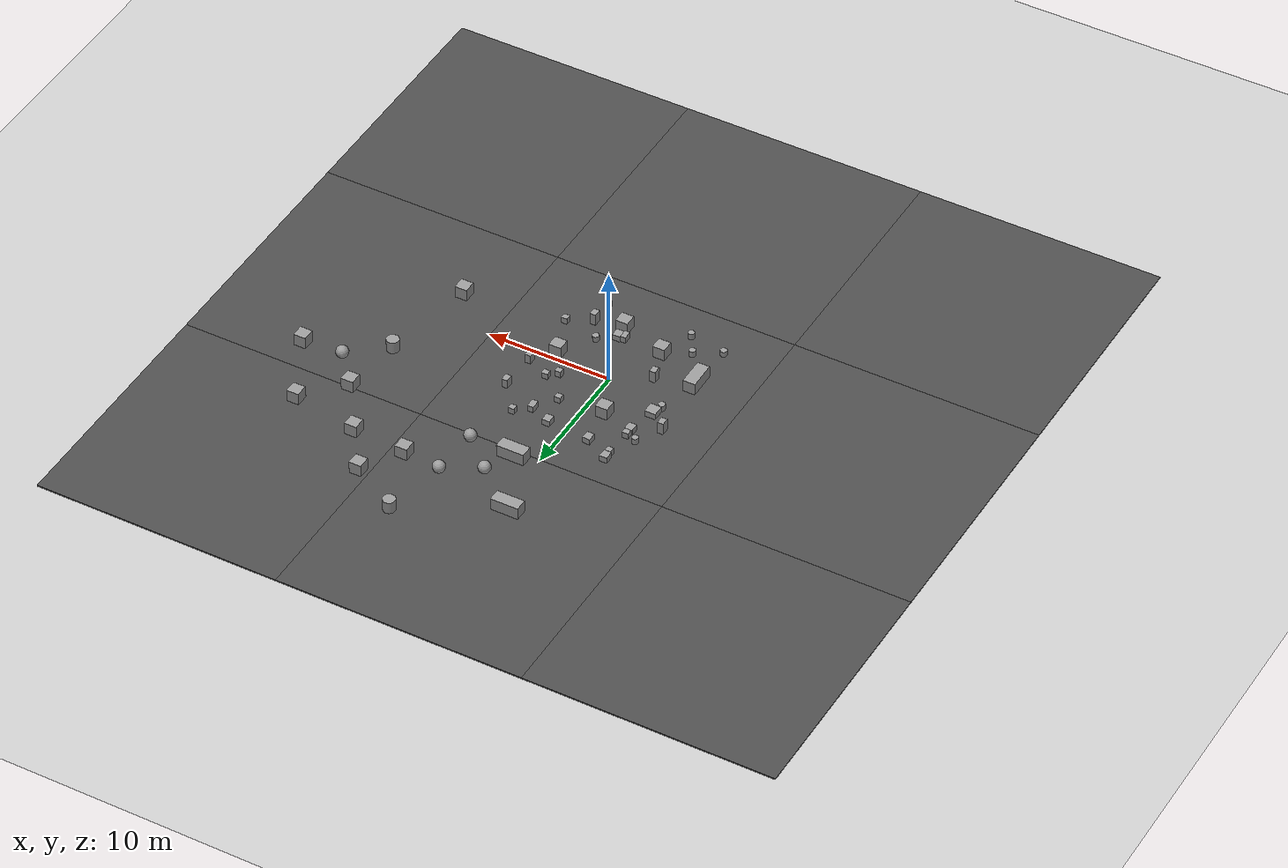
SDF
<sdf version="1.7">
 <world name="default">
  <model name="ground_plane">
   <static>1</static>
   <link name="link">
    <collision name="collision">
     <geometry><plane><normal>0 0 1</normal><size>100 100</size></plane></geometry>
     <surface>
      <contact><collide_bitmask>65535</collide_bitmask></contact>
      <friction><ode><mu>100</mu><mu2>50</mu2></ode></friction>
     </surface>
    </collision>
    <visual name="visual">
     <cast_shadows>0</cast_shadows>
     <geometry><plane><normal>0 0 1</normal><size>100 100</size></plane></geometry>
     <material>
      <script><uri>file://media/materials/scripts/gazebo.material</uri><name>Gazebo/Grey</name></script>
     </material>
    </visual>
   </link>
  </model>
  <model name="asphalt_plane">
   <static>1</static>
   <link name="link">
    <collision name="collision"><geometry><box><size>20 20 0.1</size></box></geometry></collision>
    <visual name="visual">
     <cast_shadows>0</cast_shadows>
     <geometry><box><size>20 20 0.1</size></box></geometry>
     <material>
      <script>
       <uri>model://asphalt_plane/materials/scripts</uri>
       <uri>model://asphalt_plane/materials/textures</uri>
       <name>vrc/asphalt</name>
      </script>
     </material>
    </visual>
   </link>
  </model>
  <model name="asphalt_plane_clone">
   <static>1</static>
   <link name="link">
    <collision name="collision"><geometry><box><size>20 20 0.1</size></box></geometry></collision>
    <visual name="visual">
     <cast_shadows>0</cast_shadows>
     <geometry><box><size>20 20 0.1</size></box></geometry>
     <material>
      <script>
       <uri>model://asphalt_plane/materials/scripts</uri>
       <uri>model://asphalt_plane/materials/textures</uri>
       <name>vrc/asphalt</name>
      </script>
     </material>
    </visual>
   </link>
   <pose>20 0 0 0 -0 0</pose>
  </model>
  <model name="asphalt_plane_clone_0">
   <static>1</static>
   <link name="link">
    <collision name="collision"><geometry><box><size>20 20 0.1</size></box></geometry></collision>
    <visual name="visual">
     <cast_shadows>0</cast_shadows>
     <geometry><box><size>20 20 0.1</size></box></geometry>
     <material>
      <script>
       <uri>model://asphalt_plane/materials/scripts</uri>
       <uri>model://asphalt_plane/materials/textures</uri>
       <name>vrc/asphalt</name>
      </script>
     </material>
    </visual>
   </link>
   <pose>20 -20 0 0 -0 0</pose>
  </model>
  <model name="asphalt_plane_clone_1">
   <static>1</static>
   <link name="link">
    <collision name="collision"><geometry><box><size>20 20 0.1</size></box></geometry></collision>
    <visual name="visual">
     <cast_shadows>0</cast_shadows>
     <geometry><box><size>20 20 0.1</size></box></geometry>
     <material>
      <script>
       <uri>model://asphalt_plane/materials/scripts</uri>
       <uri>model://asphalt_plane/materials/textures</uri>
       <name>vrc/asphalt</name>
      </script>
     </material>
    </visual>
   </link>
   <pose>0 -20 0 0 -0 0</pose>
  </model>
  <model name="asphalt_plane_clone_2">
   <static>1</static>
   <link name="link">
    <collision name="collision"><geometry><box><size>20 20 0.1</size></box></geometry></collision>
    <visual name="visual">
     <cast_shadows>0</cast_shadows>
     <geometry><box><size>20 20 0.1</size></box></geometry>
     <material>
      <script>
       <uri>model://asphalt_plane/materials/scripts</uri>
       <uri>model://asphalt_plane/materials/textures</uri>
       <name>vrc/asphalt</name>
      </script>
     </material>
    </visual>
   </link>
   <pose>-20 -20 0 0 -0 0</pose>
  </model>
  <model name="asphalt_plane_clone_3">
   <static>1</static>
   <link name="link">
    <collision name="collision"><geometry><box><size>20 20 0.1</size></box></geometry></collision>
    <visual name="visual">
     <cast_shadows>0</cast_shadows>
     <geometry><box><size>20 20 0.1</size></box></geometry>
     <material>
      <script>
       <uri>model://asphalt_plane/materials/scripts</uri>
       <uri>model://asphalt_plane/materials/textures</uri>
       <name>vrc/asphalt</name>
      </script>
     </material>
    </visual>
   </link>
   <pose>-20 0 0 0 -0 0</pose>
  </model>
  <model name="asphalt_plane_clone_4">
   <static>1</static>
   <link name="link">
    <collision name="collision"><geometry><box><size>20 20 0.1</size></box></geometry></collision>
    <visual name="visual">
     <cast_shadows>0</cast_shadows>
     <geometry><box><size>20 20 0.1</size></box></geometry>
     <material>
      <script>
       <uri>model://asphalt_plane/materials/scripts</uri>
       <uri>model://asphalt_plane/materials/textures</uri>
       <name>vrc/asphalt</name>
      </script>
     </material>
    </visual>
   </link>
   <pose>-20 20 0 0 -0 0</pose>
  </model>
  <model name="asphalt_plane_clone_5">
   <static>1</static>
   <link name="link">
    <collision name="collision"><geometry><box><size>20 20 0.1</size></box></geometry></collision>
    <visual name="visual">
     <cast_shadows>0</cast_shadows>
     <geometry><box><size>20 20 0.1</size></box></geometry>
     <material>
      <script>
       <uri>model://asphalt_plane/materials/scripts</uri>
       <uri>model://asphalt_plane/materials/textures</uri>
       <name>vrc/asphalt</name>
      </script>
     </material>
    </visual>
   </link>
   <pose>0 20 0 0 -0 0</pose>
  </model>
  <model name="asphalt_plane_clone_6">
   <static>1</static>
   <link name="link">
    <collision name="collision"><geometry><box><size>20 20 0.1</size></box></geometry></collision>
    <visual name="visual">
     <cast_shadows>0</cast_shadows>
     <geometry><box><size>20 20 0.1</size></box></geometry>
     <material>
      <script>
       <uri>model://asphalt_plane/materials/scripts</uri>
       <uri>model://asphalt_plane/materials/textures</uri>
       <name>vrc/asphalt</name>
      </script>
     </material>
    </visual>
   </link>
   <pose>20 20 0 0 -0 0</pose>
  </model>
  <model name="unit_box_0">
   <pose>4.32444 6.49188 0.301356 0 -0 1e-06</pose>
   <link name="link">
    <inertial>
     <mass>1</mass>
     <inertia>
      <ixx>0.166667</ixx>
      <ixy>0</ixy>
      <ixz>0</ixz>
      <iyy>0.166667</iyy>
      <iyz>0</iyz>
      <izz>0.166667</izz>
     </inertia>
    </inertial>
    <collision name="collision">
     <geometry><box><size>0.495294 0.467832 0.502712</size></box></geometry>
    </collision>
    <visual name="visual">
     <geometry><box><size>0.495294 0.467832 0.502712</size></box></geometry>
     <material>
      <script><name>Gazebo/Grey</name><uri>file://media/materials/scripts/gazebo.material</uri></script>
     </material>
    </visual>
   </link>
  </model>
  <model name="unit_box_0_clone">
   <pose>3.22245 5.47552 0.301351 -1.2e-05 1e-06 5e-06</pose>
   <link name="link">
    <inertial>
     <mass>1</mass>
     <inertia>
      <ixx>0.166667</ixx>
      <ixy>0</ixy>
      <ixz>0</ixz>
      <iyy>0.166667</iyy>
      <iyz>0</iyz>
      <izz>0.166667</izz>
     </inertia>
    </inertial>
    <collision name="collision">
     <geometry><box><size>0.495294 0.766084 0.502712</size></box></geometry>
    </collision>
    <visual name="visual">
     <geometry><box><size>0.495294 0.766084 0.502712</size></box></geometry>
     <material>
      <script><name>Gazebo/Grey</name><uri>file://media/materials/scripts/gazebo.material</uri></script>
     </material>
    </visual>
   </link>
  </model>
  <model name="unit_box_0_clone_0">
   <pose>1.49943 6.26197 0.301354 6e-06 -0 1e-06</pose>
   <link name="link">
    <inertial>
     <mass>1</mass>
     <inertia>
      <ixx>0.166667</ixx>
      <ixy>0</ixy>
      <ixz>0</ixz>
      <iyy>0.166667</iyy>
      <iyz>0</iyz>
      <izz>0.166667</izz>
     </inertia>
    </inertial>
    <collision name="collision">
     <geometry><box><size>0.622689 0.713467 0.502712</size></box></geometry>
    </collision>
    <visual name="visual">
     <geometry><box><size>0.622689 0.713467 0.502712</size></box></geometry>
     <material>
      <script><name>Gazebo/Grey</name><uri>file://media/materials/scripts/gazebo.material</uri></script>
     </material>
    </visual>
   </link>
  </model>
  <model name="unit_box_0_clone_4">
   <pose>4.11232 2.00992 0.301356 0 -0 1e-06</pose>
   <link name="link">
    <inertial>
     <mass>1</mass>
     <inertia>
      <ixx>0.166667</ixx>
      <ixy>0</ixy>
      <ixz>0</ixz>
      <iyy>0.166667</iyy>
      <iyz>0</iyz>
      <izz>0.166667</izz>
     </inertia>
    </inertial>
    <collision name="collision">
     <geometry><box><size>0.495294 0.467832 0.502712</size></box></geometry>
    </collision>
    <visual name="visual">
     <geometry><box><size>0.495294 0.467832 0.502712</size></box></geometry>
     <material>
      <script><name>Gazebo/Grey</name><uri>file://media/materials/scripts/gazebo.material</uri></script>
     </material>
    </visual>
   </link>
  </model>
  <model name="unit_cylinder_clone_6">
   <pose>2.94272 -3.28712 0.305485 -0.030723 0.027336 -0.001322</pose>
   <link name="link">
    <inertial>
     <mass>1</mass>
     <inertia><ixx>0.145833</ixx><ixy>0</ixy><ixz>0</ixz><iyy>0.145833</iyy><iyz>0</iyz><izz>0.125</izz></inertia>
    </inertial>
    <collision name="collision">
     <geometry><cylinder><radius>0.264047</radius><length>0.48967</length></cylinder></geometry>
    </collision>
    <visual name="visual">
     <geometry><cylinder><radius>0.264047</radius><length>0.48967</length></cylinder></geometry>
     <material>
      <script><name>Gazebo/Grey</name><uri>file://media/materials/scripts/gazebo.material</uri></script>
     </material>
    </visual>
   </link>
  </model>
  <model name="unit_cylinder_clone_10">
   <pose>-4.02004 -5.33492 0.294826 -2e-06 -0 0.000646</pose>
   <link name="link">
    <inertial>
     <mass>1</mass>
     <inertia><ixx>0.145833</ixx><ixy>0</ixy><ixz>0</ixz><iyy>0.145833</iyy><iyz>0</iyz><izz>0.125</izz></inertia>
    </inertial>
    <collision name="collision">
     <geometry><cylinder><radius>0.264047</radius><length>0.48967</length></cylinder></geometry>
    </collision>
    <visual name="visual">
     <geometry><cylinder><radius>0.264047</radius><length>0.48967</length></cylinder></geometry>
     <material>
      <script><name>Gazebo/Grey</name><uri>file://media/materials/scripts/gazebo.material</uri></script>
     </material>
    </visual>
   </link>
  </model>
  <model name="unit_cylinder_clone_13">
   <pose>-6.00061 -6.4427 0.294835 1e-06 -0 0.000896</pose>
   <link name="link">
    <inertial>
     <mass>1</mass>
     <inertia><ixx>0.145833</ixx><ixy>0</ixy><ixz>0</ixz><iyy>0.145833</iyy><iyz>0</iyz><izz>0.125</izz></inertia>
    </inertial>
    <collision name="collision">
     <geometry><cylinder><radius>0.264047</radius><length>0.48967</length></cylinder></geometry>
    </collision>
    <visual name="visual">
     <geometry><cylinder><radius>0.264047</radius><length>0.48967</length></cylinder></geometry>
     <material>
      <script><name>Gazebo/Grey</name><uri>file://media/materials/scripts/gazebo.material</uri></script>
     </material>
    </visual>
   </link>
  </model>
  <model name="unit_cylinder_clone_14">
   <pose>-4.99997 5 0.294825 0 -0 0.001406</pose>
   <link name="link">
    <inertial>
     <mass>1</mass>
     <inertia><ixx>0.145833</ixx><ixy>0</ixy><ixz>0</ixz><iyy>0.145833</iyy><iyz>0</iyz><izz>0.125</izz></inertia>
    </inertial>
    <collision name="collision">
     <geometry><cylinder><radius>0.264047</radius><length>0.48967</length></cylinder></geometry>
    </collision>
    <visual name="visual">
     <geometry><cylinder><radius>0.264047</radius><length>0.48967</length></cylinder></geometry>
     <material>
      <script><name>Gazebo/Grey</name><uri>file://media/materials/scripts/gazebo.material</uri></script>
     </material>
    </visual>
   </link>
  </model>
  <model name="unit_cylinder_clone_15">
   <pose>4 -7.00003 0.294826 -1e-06 -5e-06 0.001328</pose>
   <link name="link">
    <inertial>
     <mass>1</mass>
     <inertia><ixx>0.145833</ixx><ixy>0</ixy><ixz>0</ixz><iyy>0.145833</iyy><iyz>0</iyz><izz>0.125</izz></inertia>
    </inertial>
    <collision name="collision">
     <geometry><cylinder><radius>0.264047</radius><length>0.48967</length></cylinder></geometry>
    </collision>
    <visual name="visual">
     <geometry><cylinder><radius>0.264047</radius><length>0.48967</length></cylinder></geometry>
     <material>
      <script><name>Gazebo/Grey</name><uri>file://media/materials/scripts/gazebo.material</uri></script>
     </material>
    </visual>
   </link>
  </model>
  <model name="unit_cylinder_clone_16">
   <pose>-4.94243 0.925003 0.294824 3e-06 -4e-06 0.00113</pose>
   <link name="link">
    <inertial>
     <mass>1</mass>
     <inertia><ixx>0.145833</ixx><ixy>0</ixy><ixz>0</ixz><iyy>0.145833</iyy><iyz>0</iyz><izz>0.125</izz></inertia>
    </inertial>
    <collision name="collision">
     <geometry><cylinder><radius>0.264047</radius><length>0.48967</length></cylinder></geometry>
    </collision>
    <visual name="visual">
     <geometry><cylinder><radius>0.264047</radius><length>0.48967</length></cylinder></geometry>
     <material>
      <script><name>Gazebo/Grey</name><uri>file://media/materials/scripts/gazebo.material</uri></script>
     </material>
    </visual>
   </link>
  </model>
  <model name="unit_cylinder_clone_17">
   <pose>-3.00012 -6.99989 0.294837 8e-06 4e-06 0.000237</pose>
   <link name="link">
    <inertial>
     <mass>1</mass>
     <inertia><ixx>0.145833</ixx><ixy>0</ixy><ixz>0</ixz><iyy>0.145833</iyy><iyz>0</iyz><izz>0.125</izz></inertia>
    </inertial>
    <collision name="collision">
     <geometry><cylinder><radius>0.264047</radius><length>0.48967</length></cylinder></geometry>
    </collision>
    <visual name="visual">
     <geometry><cylinder><radius>0.264047</radius><length>0.48967</length></cylinder></geometry>
     <material>
      <script><name>Gazebo/Grey</name><uri>file://media/materials/scripts/gazebo.material</uri></script>
     </material>
    </visual>
   </link>
  </model>
  <model name="unit_box_0_clone_1_clone">
   <pose>-4.15621 4.74188 0.301356 0 -0 1e-06</pose>
   <link name="link">
    <inertial>
     <mass>1</mass>
     <inertia>
      <ixx>0.166667</ixx>
      <ixy>0</ixy>
      <ixz>0</ixz>
      <iyy>0.166667</iyy>
      <iyz>0</iyz>
      <izz>0.166667</izz>
     </inertia>
    </inertial>
    <collision name="collision">
     <geometry><box><size>0.495294 0.467832 0.502712</size></box></geometry>
    </collision>
    <visual name="visual">
     <geometry><box><size>0.495294 0.467832 0.502712</size></box></geometry>
     <material>
      <script><name>Gazebo/Grey</name><uri>file://media/materials/scripts/gazebo.material</uri></script>
     </material>
    </visual>
   </link>
  </model>
  <model name="unit_box_0_clone_1_clone_0">
   <pose>-4 7 0.301356 0 -0 1e-06</pose>
   <link name="link">
    <inertial>
     <mass>1</mass>
     <inertia>
      <ixx>0.166667</ixx>
      <ixy>0</ixy>
      <ixz>0</ixz>
      <iyy>0.166667</iyy>
      <iyz>0</iyz>
      <izz>0.166667</izz>
     </inertia>
    </inertial>
    <collision name="collision">
     <geometry><box><size>0.495294 0.467832 0.502712</size></box></geometry>
    </collision>
    <visual name="visual">
     <geometry><box><size>0.495294 0.467832 0.502712</size></box></geometry>
     <material>
      <script><name>Gazebo/Grey</name><uri>file://media/materials/scripts/gazebo.material</uri></script>
     </material>
    </visual>
   </link>
  </model>
  <model name="unit_box_0_clone_1_clone_2">
   <pose>5.89538 -3.99875 0.301356 0 -0 1e-06</pose>
   <link name="link">
    <inertial>
     <mass>1</mass>
     <inertia>
      <ixx>0.166667</ixx>
      <ixy>0</ixy>
      <ixz>0</ixz>
      <iyy>0.166667</iyy>
      <iyz>0</iyz>
      <izz>0.166667</izz>
     </inertia>
    </inertial>
    <collision name="collision">
     <geometry><box><size>0.495294 0.467832 0.502712</size></box></geometry>
    </collision>
    <visual name="visual">
     <geometry><box><size>0.495294 0.467832 0.502712</size></box></geometry>
     <material>
      <script><name>Gazebo/Grey</name><uri>file://media/materials/scripts/gazebo.material</uri></script>
     </material>
    </visual>
   </link>
  </model>
  <model name="unit_box_1">
   <pose>1.73473 -5.4484 0.55 0 -0 0</pose>
   <link name="link">
    <inertial>
     <mass>1</mass>
     <inertia>
      <ixx>0.166667</ixx>
      <ixy>0</ixy>
      <ixz>0</ixz>
      <iyy>0.166667</iyy>
      <iyz>0</iyz>
      <izz>0.166667</izz>
     </inertia>
    </inertial>
    <collision name="collision"><geometry><box><size>1 1 1</size></box></geometry></collision>
    <visual name="visual">
     <geometry><box><size>1 1 1</size></box></geometry>
     <material>
      <script><name>Gazebo/Grey</name><uri>file://media/materials/scripts/gazebo.material</uri></script>
     </material>
    </visual>
   </link>
  </model>
  <model name="unit_box_2">
   <pose>-2.0426 -4.24978 0.55 0 -0 0</pose>
   <link name="link">
    <inertial>
     <mass>1</mass>
     <inertia>
      <ixx>0.166667</ixx>
      <ixy>0</ixy>
      <ixz>0</ixz>
      <iyy>0.166667</iyy>
      <iyz>0</iyz>
      <izz>0.166667</izz>
     </inertia>
    </inertial>
    <collision name="collision"><geometry><box><size>1 1 1</size></box></geometry></collision>
    <visual name="visual">
     <geometry><box><size>1 1 1</size></box></geometry>
     <material>
      <script><name>Gazebo/Grey</name><uri>file://media/materials/scripts/gazebo.material</uri></script>
     </material>
    </visual>
   </link>
  </model>
  <model name="unit_box_3_clone_0">
   <pose>-2.8958 -1.60924 0.55 0 -0 0</pose>
   <link name="link">
    <inertial>
     <mass>1</mass>
     <inertia>
      <ixx>0.166667</ixx>
      <ixy>0</ixy>
      <ixz>0</ixz>
      <iyy>0.166667</iyy>
      <iyz>0</iyz>
      <izz>0.166667</izz>
     </inertia>
    </inertial>
    <collision name="collision"><geometry><box><size>0.473217 0.637104 1</size></box></geometry></collision>
    <visual name="visual">
     <geometry><box><size>0.473217 0.637104 1</size></box></geometry>
     <material>
      <script><name>Gazebo/Grey</name><uri>file://media/materials/scripts/gazebo.material</uri></script>
     </material>
    </visual>
   </link>
  </model>
  <model name="unit_box_3_clone_1">
   <pose>6.15547 4.18849 0.422713 0 -0 0</pose>
   <link name="link">
    <inertial>
     <mass>1</mass>
     <inertia>
      <ixx>0.166667</ixx>
      <ixy>0</ixy>
      <ixz>0</ixz>
      <iyy>0.166667</iyy>
      <iyz>0</iyz>
      <izz>0.166667</izz>
     </inertia>
    </inertial>
    <collision name="collision">
     <geometry><box><size>0.473217 0.637104 0.745427</size></box></geometry>
    </collision>
    <visual name="visual">
     <geometry><box><size>0.473217 0.637104 0.745427</size></box></geometry>
     <material>
      <script><name>Gazebo/Grey</name><uri>file://media/materials/scripts/gazebo.material</uri></script>
     </material>
    </visual>
   </link>
  </model>
  <model name="unit_box_3_clone_2">
   <pose>-6.12917 2.98269 0.55 0 -0 0</pose>
   <link name="link">
    <inertial>
     <mass>1</mass>
     <inertia>
      <ixx>0.166667</ixx>
      <ixy>0</ixy>
      <ixz>0</ixz>
      <iyy>0.166667</iyy>
      <iyz>0</iyz>
      <izz>0.166667</izz>
     </inertia>
    </inertial>
    <collision name="collision"><geometry><box><size>0.473217 0.637104 1</size></box></geometry></collision>
    <visual name="visual">
     <geometry><box><size>0.473217 0.637104 1</size></box></geometry>
     <material>
      <script><name>Gazebo/Grey</name><uri>file://media/materials/scripts/gazebo.material</uri></script>
     </material>
    </visual>
   </link>
  </model>
  <model name="unit_box_3_clone_3">
   <pose>4 -5 0.55 0 -0 0</pose>
   <link name="link">
    <inertial>
     <mass>1</mass>
     <inertia>
      <ixx>0.166667</ixx>
      <ixy>0</ixy>
      <ixz>0</ixz>
      <iyy>0.166667</iyy>
      <iyz>0</iyz>
      <izz>0.166667</izz>
     </inertia>
    </inertial>
    <collision name="collision"><geometry><box><size>0.473217 0.637104 1</size></box></geometry></collision>
    <visual name="visual">
     <geometry><box><size>0.473217 0.637104 1</size></box></geometry>
     <material>
      <script><name>Gazebo/Grey</name><uri>file://media/materials/scripts/gazebo.material</uri></script>
     </material>
    </visual>
   </link>
  </model>
  <model name="unit_box_3_clone_5">
   <pose>6.02964 1.04247 0.43567 0 -0 0</pose>
   <link name="link">
    <inertial>
     <mass>1</mass>
     <inertia>
      <ixx>0.166667</ixx>
      <ixy>0</ixy>
      <ixz>0</ixz>
      <iyy>0.166667</iyy>
      <iyz>0</iyz>
      <izz>0.166667</izz>
     </inertia>
    </inertial>
    <collision name="collision"><geometry><box><size>0.473217 0.637104 0.77134</size></box></geometry></collision>
    <visual name="visual">
     <geometry><box><size>0.473217 0.637104 0.77134</size></box></geometry>
     <material>
      <script><name>Gazebo/Grey</name><uri>file://media/materials/scripts/gazebo.material</uri></script>
     </material>
    </visual>
   </link>
  </model>
  <model name="unit_box_4">
   <pose>15.9542 9.93417 0.549998 -2e-06 2e-06 -6e-06</pose>
   <link name="link">
    <inertial>
     <mass>1</mass>
     <inertia>
      <ixx>0.166667</ixx>
      <ixy>0</ixy>
      <ixz>0</ixz>
      <iyy>0.166667</iyy>
      <iyz>0</iyz>
      <izz>0.166667</izz>
     </inertia>
    </inertial>
    <collision name="collision"><geometry><box><size>1 1 1</size></box></geometry></collision>
    <visual name="visual">
     <geometry><box><size>1 1 1</size></box></geometry>
     <material>
      <script><name>Gazebo/Grey</name><uri>file://media/materials/scripts/gazebo.material</uri></script>
     </material>
    </visual>
   </link>
  </model>
  <model name="unit_box_5">
   <pose>1.86598 10.6312 0.549967 0 2.9e-05 0</pose>
   <link name="link">
    <inertial>
     <mass>1</mass>
     <inertia>
      <ixx>0.166667</ixx>
      <ixy>0</ixy>
      <ixz>0</ixz>
      <iyy>0.166667</iyy>
      <iyz>0</iyz>
      <izz>0.166667</izz>
     </inertia>
    </inertial>
    <collision name="collision"><geometry><box><size>2.25366 1 1</size></box></geometry></collision>
    <visual name="visual">
     <geometry><box><size>2.25366 1 1</size></box></geometry>
     <material>
      <script><name>Gazebo/Grey</name><uri>file://media/materials/scripts/gazebo.material</uri></script>
     </material>
    </visual>
   </link>
  </model>
  <model name="unit_box_5_clone">
   <pose>-0.607333 15.7172 0.549967 0 -2.9e-05 0</pose>
   <link name="link">
    <inertial>
     <mass>1</mass>
     <inertia>
      <ixx>0.166667</ixx>
      <ixy>0</ixy>
      <ixz>0</ixz>
      <iyy>0.166667</iyy>
      <iyz>0</iyz>
      <izz>0.166667</izz>
     </inertia>
    </inertial>
    <collision name="collision"><geometry><box><size>2.25366 1 1</size></box></geometry></collision>
    <visual name="visual">
     <geometry><box><size>2.25366 1 1</size></box></geometry>
     <material>
      <script><name>Gazebo/Grey</name><uri>file://media/materials/scripts/gazebo.material</uri></script>
     </material>
    </visual>
   </link>
  </model>
  <model name="unit_sphere">
   <link name="link">
    <inertial>
     <mass>1.41372</mass>
     <inertia>
      <ixx>0.141372</ixx>
      <ixy>0</ixy>
      <ixz>0</ixz>
      <iyy>0.141372</iyy>
      <iyz>0</iyz>
      <izz>0.141372</izz>
     </inertia>
    </inertial>
    <visual name="visual">
     <geometry><sphere><radius>0.5</radius></sphere></geometry>
     <material>
      <script><name>Gazebo/Grey</name><uri>file://media/materials/scripts/gazebo.material</uri></script>
      <shader type="pixel"><normal_map>__default__</normal_map></shader>
     </material>
    </visual>
    <collision name="collision">
     <geometry><sphere><radius>0.5</radius></sphere></geometry>
     <surface>
      <friction>
       <ode><mu>1</mu><mu2>1</mu2><fdir1>0 0 0</fdir1><slip1>0</slip1><slip2>0</slip2></ode>
       <torsional>
        <coefficient>1</coefficient>
        <patch_radius>0</patch_radius>
        <surface_radius>0</surface_radius>
        <use_patch_radius>1</use_patch_radius>
        <ode><slip>0</slip></ode>
       </torsional>
      </friction>
      <bounce><restitution_coefficient>0</restitution_coefficient><threshold>1e+06</threshold></bounce>
      <contact>
       <collide_without_contact>0</collide_without_contact>
       <collide_without_contact_bitmask>1</collide_without_contact_bitmask>
       <collide_bitmask>1</collide_bitmask>
       <ode>
        <soft_cfm>0</soft_cfm>
        <soft_erp>0.2</soft_erp>
        <kp>1e+13</kp>
        <kd>1</kd>
        <max_vel>0.01</max_vel>
        <min_depth>0</min_depth>
       </ode>
       <bullet>
        <split_impulse>1</split_impulse>
        <split_impulse_penetration_threshold>-0.01</split_impulse_penetration_threshold>
        <soft_cfm>0</soft_cfm>
        <soft_erp>0.2</soft_erp>
        <kp>1e+13</kp>
        <kd>1</kd>
       </bullet>
      </contact>
     </surface>
    </collision>
   </link>
   <static>0</static>
   <pose>5.71347 14.6249 0.55 0 -0 0</pose>
  </model>
  <model name="unit_sphere_clone">
   <link name="link">
    <inertial>
     <mass>1.41372</mass>
     <inertia>
      <ixx>0.141372</ixx>
      <ixy>0</ixy>
      <ixz>0</ixz>
      <iyy>0.141372</iyy>
      <iyz>0</iyz>
      <izz>0.141372</izz>
     </inertia>
    </inertial>
    <visual name="visual">
     <geometry><sphere><radius>0.5</radius></sphere></geometry>
     <material>
      <script><name>Gazebo/Grey</name><uri>file://media/materials/scripts/gazebo.material</uri></script>
      <shader type="pixel"><normal_map>__default__</normal_map></shader>
     </material>
    </visual>
    <collision name="collision">
     <geometry><sphere><radius>0.5</radius></sphere></geometry>
     <surface>
      <friction>
       <ode><mu>1</mu><mu2>1</mu2><fdir1>0 0 0</fdir1><slip1>0</slip1><slip2>0</slip2></ode>
       <torsional>
        <coefficient>1</coefficient>
        <patch_radius>0</patch_radius>
        <surface_radius>0</surface_radius>
        <use_patch_radius>1</use_patch_radius>
        <ode><slip>0</slip></ode>
       </torsional>
      </friction>
      <bounce><restitution_coefficient>0</restitution_coefficient><threshold>1e+06</threshold></bounce>
      <contact>
       <collide_without_contact>0</collide_without_contact>
       <collide_without_contact_bitmask>1</collide_without_contact_bitmask>
       <collide_bitmask>1</collide_bitmask>
       <ode>
        <soft_cfm>0</soft_cfm>
        <soft_erp>0.2</soft_erp>
        <kp>1e+13</kp>
        <kd>1</kd>
        <max_vel>0.01</max_vel>
        <min_depth>0</min_depth>
       </ode>
       <bullet>
        <split_impulse>1</split_impulse>
        <split_impulse_penetration_threshold>-0.01</split_impulse_penetration_threshold>
        <soft_cfm>0</soft_cfm>
        <soft_erp>0.2</soft_erp>
        <kp>1e+13</kp>
        <kd>1</kd>
       </bullet>
      </contact>
     </surface>
    </collision>
   </link>
   <static>0</static>
   <pose>5.44361 10.6261 0.55 0 -0 0</pose>
  </model>
  <model name="unit_cylinder_0">
   <pose>15.381 4.88172 0.55 -0 -0 -7.3e-05</pose>
   <link name="link">
    <inertial>
     <mass>1</mass>
     <inertia><ixx>0.145833</ixx><ixy>0</ixy><ixz>0</ixz><iyy>0.145833</iyy><iyz>0</iyz><izz>0.125</izz></inertia>
    </inertial>
    <collision name="collision">
     <geometry><cylinder><radius>0.5</radius><length>1</length></cylinder></geometry>
    </collision>
    <visual name="visual">
     <geometry><cylinder><radius>0.5</radius><length>1</length></cylinder></geometry>
     <material>
      <script><name>Gazebo/Grey</name><uri>file://media/materials/scripts/gazebo.material</uri></script>
     </material>
    </visual>
   </link>
  </model>
  <model name="unit_sphere_clone_0">
   <link name="link">
    <inertial>
     <mass>1.41372</mass>
     <inertia>
      <ixx>0.141372</ixx>
      <ixy>0</ixy>
      <ixz>0</ixz>
      <iyy>0.141372</iyy>
      <iyz>0</iyz>
      <izz>0.141372</izz>
     </inertia>
    </inertial>
    <visual name="visual">
     <geometry><sphere><radius>0.5</radius></sphere></geometry>
     <material>
      <script><name>Gazebo/Grey</name><uri>file://media/materials/scripts/gazebo.material</uri></script>
      <shader type="pixel"><normal_map>__default__</normal_map></shader>
     </material>
    </visual>
    <collision name="collision">
     <geometry><sphere><radius>0.5</radius></sphere></geometry>
     <surface>
      <friction>
       <ode><mu>1</mu><mu2>1</mu2><fdir1>0 0 0</fdir1><slip1>0</slip1><slip2>0</slip2></ode>
       <torsional>
        <coefficient>1</coefficient>
        <patch_radius>0</patch_radius>
        <surface_radius>0</surface_radius>
        <use_patch_radius>1</use_patch_radius>
        <ode><slip>0</slip></ode>
       </torsional>
      </friction>
      <bounce><restitution_coefficient>0</restitution_coefficient><threshold>1e+06</threshold></bounce>
      <contact>
       <collide_without_contact>0</collide_without_contact>
       <collide_without_contact_bitmask>1</collide_without_contact_bitmask>
       <collide_bitmask>1</collide_bitmask>
       <ode>
        <soft_cfm>0</soft_cfm>
        <soft_erp>0.2</soft_erp>
        <kp>1e+13</kp>
        <kd>1</kd>
        <max_vel>0.01</max_vel>
        <min_depth>0</min_depth>
       </ode>
       <bullet>
        <split_impulse>1</split_impulse>
        <split_impulse_penetration_threshold>-0.01</split_impulse_penetration_threshold>
        <soft_cfm>0</soft_cfm>
        <soft_erp>0.2</soft_erp>
        <kp>1e+13</kp>
        <kd>1</kd>
       </bullet>
      </contact>
     </surface>
    </collision>
   </link>
   <static>0</static>
   <pose>2.83927 13.0704 0.55 0 -0 0</pose>
  </model>
  <model name="unit_box_4_clone">
   <pose>8.81735 14.2654 0.55 0 -0 0</pose>
   <link name="link">
    <inertial>
     <mass>1</mass>
     <inertia>
      <ixx>0.166667</ixx>
      <ixy>0</ixy>
      <ixz>0</ixz>
      <iyy>0.166667</iyy>
      <iyz>0</iyz>
      <izz>0.166667</izz>
     </inertia>
    </inertial>
    <collision name="collision"><geometry><box><size>1 1 1</size></box></geometry></collision>
    <visual name="visual">
     <geometry><box><size>1 1 1</size></box></geometry>
     <material>
      <script><name>Gazebo/Grey</name><uri>file://media/materials/scripts/gazebo.material</uri></script>
     </material>
    </visual>
   </link>
  </model>
  <model name="unit_cylinder_1">
   <pose>6.78695 19.7557 0.55 -0 -0 -0.000801</pose>
   <link name="link">
    <inertial>
     <mass>1</mass>
     <inertia><ixx>0.145833</ixx><ixy>0</ixy><ixz>0</ixz><iyy>0.145833</iyy><iyz>0</iyz><izz>0.125</izz></inertia>
    </inertial>
    <collision name="collision">
     <geometry><cylinder><radius>0.5</radius><length>1</length></cylinder></geometry>
    </collision>
    <visual name="visual">
     <geometry><cylinder><radius>0.5</radius><length>1</length></cylinder></geometry>
     <material>
      <script><name>Gazebo/Grey</name><uri>file://media/materials/scripts/gazebo.material</uri></script>
     </material>
    </visual>
   </link>
  </model>
  <model name="unit_sphere_0">
   <pose>18.1703 7.41217 0.55 0 -0 0</pose>
   <link name="link">
    <inertial>
     <mass>1</mass>
     <inertia><ixx>0.1</ixx><ixy>0</ixy><ixz>0</ixz><iyy>0.1</iyy><iyz>0</iyz><izz>0.1</izz></inertia>
    </inertial>
    <collision name="collision"><geometry><sphere><radius>0.5</radius></sphere></geometry></collision>
    <visual name="visual">
     <geometry><sphere><radius>0.5</radius></sphere></geometry>
     <material>
      <script><name>Gazebo/Grey</name><uri>file://media/materials/scripts/gazebo.material</uri></script>
     </material>
    </visual>
   </link>
  </model>
  <model name="unit_box_4_clone_clone">
   <pose>13.2189 13.9745 0.55 0 -0 0</pose>
   <link name="link">
    <inertial>
     <mass>1</mass>
     <inertia>
      <ixx>0.166667</ixx>
      <ixy>0</ixy>
      <ixz>0</ixz>
      <iyy>0.166667</iyy>
      <iyz>0</iyz>
      <izz>0.166667</izz>
     </inertia>
    </inertial>
    <collision name="collision"><geometry><box><size>1 1 1</size></box></geometry></collision>
    <visual name="visual">
     <geometry><box><size>1 1 1</size></box></geometry>
     <material>
      <script><name>Gazebo/Grey</name><uri>file://media/materials/scripts/gazebo.material</uri></script>
     </material>
    </visual>
   </link>
  </model>
  <model name="unit_box_4_clone_clone_0">
   <pose>10.7891 17.3515 0.55 0 -0 0</pose>
   <link name="link">
    <inertial>
     <mass>1</mass>
     <inertia>
      <ixx>0.166667</ixx>
      <ixy>0</ixy>
      <ixz>0</ixz>
      <iyy>0.166667</iyy>
      <iyz>0</iyz>
      <izz>0.166667</izz>
     </inertia>
    </inertial>
    <collision name="collision"><geometry><box><size>1 1 1</size></box></geometry></collision>
    <visual name="visual">
     <geometry><box><size>1 1 1</size></box></geometry>
     <material>
      <script><name>Gazebo/Grey</name><uri>file://media/materials/scripts/gazebo.material</uri></script>
     </material>
    </visual>
   </link>
  </model>
  <model name="unit_box_4_clone_clone_1">
   <pose>21.4596 7.50869 0.55 0 -0 0</pose>
   <link name="link">
    <inertial>
     <mass>1</mass>
     <inertia>
      <ixx>0.166667</ixx>
      <ixy>0</ixy>
      <ixz>0</ixz>
      <iyy>0.166667</iyy>
      <iyz>0</iyz>
      <izz>0.166667</izz>
     </inertia>
    </inertial>
    <collision name="collision"><geometry><box><size>1 1 1</size></box></geometry></collision>
    <visual name="visual">
     <geometry><box><size>1 1 1</size></box></geometry>
     <material>
      <script><name>Gazebo/Grey</name><uri>file://media/materials/scripts/gazebo.material</uri></script>
     </material>
    </visual>
   </link>
  </model>
  <model name="unit_box_4_clone_clone_2">
   <pose>18.6991 12.9908 0.55 0 -0 0</pose>
   <link name="link">
    <inertial>
     <mass>1</mass>
     <inertia>
      <ixx>0.166667</ixx>
      <ixy>0</ixy>
      <ixz>0</ixz>
      <iyy>0.166667</iyy>
      <iyz>0</iyz>
      <izz>0.166667</izz>
     </inertia>
    </inertial>
    <collision name="collision"><geometry><box><size>1 1 1</size></box></geometry></collision>
    <visual name="visual">
     <geometry><box><size>1 1 1</size></box></geometry>
     <material>
      <script><name>Gazebo/Grey</name><uri>file://media/materials/scripts/gazebo.material</uri></script>
     </material>
    </visual>
   </link>
  </model>
  <model name="unit_box_7">
   <pose>13.8919 -2.89139 0.55 0 -0 0</pose>
   <link name="link">
    <inertial>
     <mass>1</mass>
     <inertia>
      <ixx>0.166667</ixx>
      <ixy>0</ixy>
      <ixz>0</ixz>
      <iyy>0.166667</iyy>
      <iyz>0</iyz>
      <izz>0.166667</izz>
     </inertia>
    </inertial>
    <collision name="collision"><geometry><box><size>1 1 1</size></box></geometry></collision>
    <visual name="visual">
     <geometry><box><size>1 1 1</size></box></geometry>
     <material>
      <script><name>Gazebo/Grey</name><uri>file://media/materials/scripts/gazebo.material</uri></script>
     </material>
    </visual>
   </link>
  </model>
  <model name="unit_box_1_clone">
   <pose>4.66104 -0.722132 0.55 0 0 -1e-06</pose>
   <link name="link">
    <inertial>
     <mass>1</mass>
     <inertia>
      <ixx>0.166667</ixx>
      <ixy>0</ixy>
      <ixz>0</ixz>
      <iyy>0.166667</iyy>
      <iyz>0</iyz>
      <izz>0.166667</izz>
     </inertia>
    </inertial>
    <collision name="collision"><geometry><box><size>1 1 1</size></box></geometry></collision>
    <visual name="visual">
     <geometry><box><size>1 1 1</size></box></geometry>
     <material>
      <script><name>Gazebo/Grey</name><uri>file://media/materials/scripts/gazebo.material</uri></script>
     </material>
    </visual>
   </link>
  </model>
  <model name="unit_box_0_clone_4_clone_clone">
   <pose>-4.64604 1.71216 0.301351 1e-05 0 1e-06</pose>
   <link name="link">
    <inertial>
     <mass>1</mass>
     <inertia>
      <ixx>0.166667</ixx>
      <ixy>0</ixy>
      <ixz>0</ixz>
      <iyy>0.166667</iyy>
      <iyz>0</iyz>
      <izz>0.166667</izz>
     </inertia>
    </inertial>
    <collision name="collision">
     <geometry><box><size>0.893918 0.942186 0.502712</size></box></geometry>
    </collision>
    <visual name="visual">
     <geometry><box><size>0.893918 0.942186 0.502712</size></box></geometry>
     <material>
      <script><name>Gazebo/Grey</name><uri>file://media/materials/scripts/gazebo.material</uri></script>
     </material>
    </visual>
   </link>
  </model>
  <model name="unit_box_1_clone_0">
   <pose>-1.58578 3.44521 0.55 0 -0 0</pose>
   <link name="link">
    <inertial>
     <mass>1</mass>
     <inertia>
      <ixx>0.166667</ixx>
      <ixy>0</ixy>
      <ixz>0</ixz>
      <iyy>0.166667</iyy>
      <iyz>0</iyz>
      <izz>0.166667</izz>
     </inertia>
    </inertial>
    <collision name="collision"><geometry><box><size>1 1 1</size></box></geometry></collision>
    <visual name="visual">
     <geometry><box><size>1 1 1</size></box></geometry>
     <material>
      <script><name>Gazebo/Grey</name><uri>file://media/materials/scripts/gazebo.material</uri></script>
     </material>
    </visual>
   </link>
  </model>
  <model name="unit_box_5_clone_0_clone_clone">
   <pose>-5.77857 -2.70623 0.549967 0 -2.9e-05 1.58185</pose>
   <link name="link">
    <inertial>
     <mass>1</mass>
     <inertia>
      <ixx>0.166667</ixx>
      <ixy>0</ixy>
      <ixz>0</ixz>
      <iyy>0.166667</iyy>
      <iyz>0</iyz>
      <izz>0.166667</izz>
     </inertia>
    </inertial>
    <collision name="collision"><geometry><box><size>2.25366 1 1</size></box></geometry></collision>
    <visual name="visual">
     <geometry><box><size>2.25366 1 1</size></box></geometry>
     <material>
      <script><name>Gazebo/Grey</name><uri>file://media/materials/scripts/gazebo.material</uri></script>
     </material>
    </visual>
   </link>
  </model>
  <model name="unit_cylinder_clone_9_clone">
   <pose>-1.8239 -5.03664 0.294837 0 9e-06 0.000364</pose>
   <link name="link">
    <inertial>
     <mass>1</mass>
     <inertia><ixx>0.145833</ixx><ixy>0</ixy><ixz>0</ixz><iyy>0.145833</iyy><iyz>0</iyz><izz>0.125</izz></inertia>
    </inertial>
    <collision name="collision">
     <geometry><cylinder><radius>0.264047</radius><length>0.48967</length></cylinder></geometry>
    </collision>
    <visual name="visual">
     <geometry><cylinder><radius>0.264047</radius><length>0.48967</length></cylinder></geometry>
     <material>
      <script><name>Gazebo/Grey</name><uri>file://media/materials/scripts/gazebo.material</uri></script>
     </material>
    </visual>
   </link>
  </model>
  <model name="unit_box_0_clone_1_clone_1_clone">
   <pose>2.0014 3.8114 0.301356 0 -0 1e-06</pose>
   <link name="link">
    <inertial>
     <mass>1</mass>
     <inertia>
      <ixx>0.166667</ixx>
      <ixy>0</ixy>
      <ixz>0</ixz>
      <iyy>0.166667</iyy>
      <iyz>0</iyz>
      <izz>0.166667</izz>
     </inertia>
    </inertial>
    <collision name="collision">
     <geometry><box><size>0.495294 0.467832 0.502712</size></box></geometry>
    </collision>
    <visual name="visual">
     <geometry><box><size>0.495294 0.467832 0.502712</size></box></geometry>
     <material>
      <script><name>Gazebo/Grey</name><uri>file://media/materials/scripts/gazebo.material</uri></script>
     </material>
    </visual>
   </link>
  </model>
  <model name="unit_box_0_clone_0_clone_clone">
   <pose>1.61508 -4.30305 0.301357 -2e-06 0 0.011458</pose>
   <link name="link">
    <inertial>
     <mass>1</mass>
     <inertia>
      <ixx>0.166667</ixx>
      <ixy>0</ixy>
      <ixz>0</ixz>
      <iyy>0.166667</iyy>
      <iyz>0</iyz>
      <izz>0.166667</izz>
     </inertia>
    </inertial>
    <collision name="collision">
     <geometry><box><size>0.622689 0.713467 0.502712</size></box></geometry>
    </collision>
    <visual name="visual">
     <geometry><box><size>0.622689 0.713467 0.502712</size></box></geometry>
     <material>
      <script><name>Gazebo/Grey</name><uri>file://media/materials/scripts/gazebo.material</uri></script>
     </material>
    </visual>
   </link>
  </model>
  <model name="unit_box_0_clone_0_clone_clone_0">
   <pose>-4.16079 4.1507 0.301354 6e-06 -0 1e-06</pose>
   <link name="link">
    <inertial>
     <mass>1</mass>
     <inertia>
      <ixx>0.166667</ixx>
      <ixy>0</ixy>
      <ixz>0</ixz>
      <iyy>0.166667</iyy>
      <iyz>0</iyz>
      <izz>0.166667</izz>
     </inertia>
    </inertial>
    <collision name="collision">
     <geometry><box><size>0.622689 0.713467 0.502712</size></box></geometry>
    </collision>
    <visual name="visual">
     <geometry><box><size>0.622689 0.713467 0.502712</size></box></geometry>
     <material>
      <script><name>Gazebo/Grey</name><uri>file://media/materials/scripts/gazebo.material</uri></script>
     </material>
    </visual>
   </link>
  </model>
  <model name="unit_box_0_clone_0_clone_clone_1">
   <pose>-4.02588 7.61132 0.301354 6e-06 -0 1e-06</pose>
   <link name="link">
    <inertial>
     <mass>1</mass>
     <inertia>
      <ixx>0.166667</ixx>
      <ixy>0</ixy>
      <ixz>0</ixz>
      <iyy>0.166667</iyy>
      <iyz>0</iyz>
      <izz>0.166667</izz>
     </inertia>
    </inertial>
    <collision name="collision">
     <geometry><box><size>0.622689 0.713467 0.502712</size></box></geometry>
    </collision>
    <visual name="visual">
     <geometry><box><size>0.622689 0.713467 0.502712</size></box></geometry>
     <material>
      <script><name>Gazebo/Grey</name><uri>file://media/materials/scripts/gazebo.material</uri></script>
     </material>
    </visual>
   </link>
  </model>
  <model name="unit_box_0_clone_0_clone_clone_2">
   <pose>-1.99293 6.50692 0.301354 6e-06 -0 -0.042465</pose>
   <link name="link">
    <inertial>
     <mass>1</mass>
     <inertia>
      <ixx>0.166667</ixx>
      <ixy>0</ixy>
      <ixz>0</ixz>
      <iyy>0.166667</iyy>
      <iyz>0</iyz>
      <izz>0.166667</izz>
     </inertia>
    </inertial>
    <collision name="collision">
     <geometry><box><size>0.622689 0.713467 0.502712</size></box></geometry>
    </collision>
    <visual name="visual">
     <geometry><box><size>0.622689 0.713467 0.502712</size></box></geometry>
     <material>
      <script><name>Gazebo/Grey</name><uri>file://media/materials/scripts/gazebo.material</uri></script>
     </material>
    </visual>
   </link>
  </model>
  <model name="unit_box_0_clone_2_clone">
   <pose>3.35959 1.37329 0.311961 0.021353 0.023167 -0.03534</pose>
   <link name="link">
    <inertial>
     <mass>1</mass>
     <inertia>
      <ixx>0.166667</ixx>
      <ixy>0</ixy>
      <ixz>0</ixz>
      <iyy>0.166667</iyy>
      <iyz>0</iyz>
      <izz>0.166667</izz>
     </inertia>
    </inertial>
    <collision name="collision">
     <geometry><box><size>0.495294 0.467832 0.502712</size></box></geometry>
    </collision>
    <visual name="visual">
     <geometry><box><size>0.495294 0.467832 0.502712</size></box></geometry>
     <material>
      <script><name>Gazebo/Grey</name><uri>file://media/materials/scripts/gazebo.material</uri></script>
     </material>
    </visual>
   </link>
  </model>
  <model name="unit_box_0_clone_0_clone_clone_3">
   <pose>1.09452 -4.39231 0.31211 0 -0 0.011484</pose>
   <link name="link">
    <inertial>
     <mass>1</mass>
     <inertia>
      <ixx>0.166667</ixx>
      <ixy>0</ixy>
      <ixz>0</ixz>
      <iyy>0.166667</iyy>
      <iyz>0</iyz>
      <izz>0.166667</izz>
     </inertia>
    </inertial>
    <collision name="collision"><geometry><box><size>0.420152 0.713467 0.52422</size></box></geometry></collision>
    <visual name="visual">
     <geometry><box><size>0.420152 0.713467 0.52422</size></box></geometry>
     <material>
      <script><name>Gazebo/Grey</name><uri>file://media/materials/scripts/gazebo.material</uri></script>
     </material>
    </visual>
   </link>
  </model>
 </world>
</sdf>
